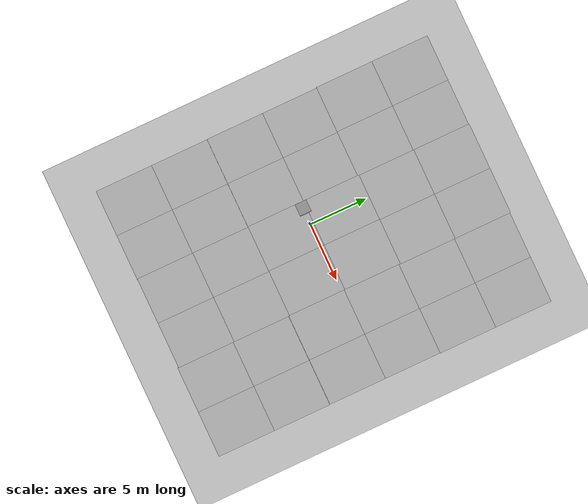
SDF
<sdf version="1.7">
 <world name="default">
  <light name="sun" type="directional">
   <pose>0 0 10 0 -0 0</pose>
   <diffuse>0.8 0.8 0.8 1</diffuse>
   <specular>0.2 0.2 0.2 1</specular>
   <attenuation>
    <range>1000</range>
    <constant>0.9</constant>
    <linear>0.01</linear>
    <quadratic>0.001</quadratic>
   </attenuation>
   <direction>-0.5 0.1 -0.9</direction>
   <spot><inner_angle>0</inner_angle><outer_angle>0</outer_angle><falloff>0</falloff></spot>
  </light>
  <model name="ground_plane">
   <static>1</static>
   <link name="link">
    <collision name="collision">
     <geometry><plane><normal>0 0 1</normal><size>100 100</size></plane></geometry>
     <surface><friction><ode><mu>100</mu><mu2>50</mu2></ode></friction></surface>
    </collision>
    <visual name="visual">
     <cast_shadows>0</cast_shadows>
     <geometry><plane><normal>0 0 1</normal><size>100 100</size></plane></geometry>
     <material>
      <script><uri>file://media/materials/scripts/gazebo.material</uri><name>Gazebo/Grey</name></script>
     </material>
    </visual>
   </link>
  </model>
  <gravity>0 0 -9.8</gravity>
  <magnetic_field>6e-06 2.3e-05 -4.2e-05</magnetic_field>
  <atmosphere type="adiabatic"/>
  <physics type="ode">
   <max_step_size>0.001</max_step_size>
   <real_time_factor>1</real_time_factor>
   <real_time_update_rate>1000</real_time_update_rate>
  </physics>
  <scene><ambient>0.4 0.4 0.4 1</ambient><background>0.7 0.7 0.7 1</background><shadows>1</shadows></scene>
  <spherical_coordinates>
   <surface_model>EARTH_WGS84</surface_model>
   <latitude_deg>0</latitude_deg>
   <longitude_deg>0</longitude_deg>
   <elevation>0</elevation>
   <heading_deg>0</heading_deg>
  </spherical_coordinates>
  <model name="mud_box">
   <static>1</static>
   <link name="link">
    <collision name="collision"><geometry><box><size>8 10 0.2</size></box></geometry></collision>
    <visual name="visual_1">
     <pose>-2 2.5 0 0 -0 0</pose>
     <cast_shadows>0</cast_shadows>
     <geometry><box><size>4 5 0.2</size></box></geometry>
     <material>
      <script>
       <uri>model://mud_box/materials/scripts</uri>
       <uri>model://mud_box/materials/textures</uri>
       <name>vrc/mud</name>
      </script>
     </material>
    </visual>
    <visual name="visual_2">
     <pose>2 2.5 0 0 -0 0</pose>
     <cast_shadows>0</cast_shadows>
     <geometry><box><size>4 5 0.2</size></box></geometry>
     <material>
      <script>
       <uri>model://mudbox/materials/scripts</uri>
       <uri>model://mudbox/materials/textures</uri>
       <name>vrc/mud</name>
      </script>
     </material>
    </visual>
    <visual name="visual_3">
     <pose>2 -2.5 0 0 -0 0</pose>
     <cast_shadows>0</cast_shadows>
     <geometry><box><size>4 5 0.2</size></box></geometry>
     <material>
      <script>
       <uri>model://mud_box/materials/scripts</uri>
       <uri>model://mud_box/materials/textures</uri>
       <name>vrc/mud</name>
      </script>
     </material>
    </visual>
    <visual name="visual_4">
     <pose>-2 -2.5 0 0 -0 0</pose>
     <cast_shadows>0</cast_shadows>
     <geometry><box><size>4 5 0.2</size></box></geometry>
     <material>
      <script>
       <uri>model://mud_box/materials/scripts</uri>
       <uri>model://mud_box/materials/textures</uri>
       <name>vrc/mud</name>
      </script>
     </material>
    </visual>
   </link>
   <pose>1.99616 0.287578 0 0 -0 0</pose>
  </model>
  <model name="mud_box_0">
   <static>1</static>
   <link name="link">
    <collision name="collision"><geometry><box><size>8 10 0.2</size></box></geometry></collision>
    <visual name="visual_1">
     <pose>-2 2.5 0 0 -0 0</pose>
     <cast_shadows>0</cast_shadows>
     <geometry><box><size>4 5 0.2</size></box></geometry>
     <material>
      <script>
       <uri>model://mud_box/materials/scripts</uri>
       <uri>model://mud_box/materials/textures</uri>
       <name>vrc/mud</name>
      </script>
     </material>
    </visual>
    <visual name="visual_2">
     <pose>2 2.5 0 0 -0 0</pose>
     <cast_shadows>0</cast_shadows>
     <geometry><box><size>4 5 0.2</size></box></geometry>
     <material>
      <script>
       <uri>model://mud_box/materials/scripts</uri>
       <uri>model://mud_box/materials/textures</uri>
       <name>vrc/mud</name>
      </script>
     </material>
    </visual>
    <visual name="visual_3">
     <pose>2 -2.5 0 0 -0 0</pose>
     <cast_shadows>0</cast_shadows>
     <geometry><box><size>4 5 0.2</size></box></geometry>
     <material>
      <script>
       <uri>model://mud_box/materials/scripts</uri>
       <uri>model://mud_box/materials/textures</uri>
       <name>vrc/mud</name>
      </script>
     </material>
    </visual>
    <visual name="visual_4">
     <pose>-2 -2.5 0 0 -0 0</pose>
     <cast_shadows>0</cast_shadows>
     <geometry><box><size>4 5 0.2</size></box></geometry>
     <material>
      <script>
       <uri>model://mud_box/materials/scripts</uri>
       <uri>model://mud_box/materials/textures</uri>
       <name>vrc/mud</name>
      </script>
     </material>
    </visual>
   </link>
   <pose>2.03447 10.2139 0 0 -0 0</pose>
  </model>
  <model name="mud_box_1">
   <static>1</static>
   <link name="link">
    <collision name="collision"><geometry><box><size>8 10 0.2</size></box></geometry></collision>
    <visual name="visual_1">
     <pose>-2 2.5 0 0 -0 0</pose>
     <cast_shadows>0</cast_shadows>
     <geometry><box><size>4 5 0.2</size></box></geometry>
     <material>
      <script>
       <uri>model://mud_box/materials/scripts</uri>
       <uri>model://mud_box/materials/textures</uri>
       <name>vrc/mud</name>
      </script>
     </material>
    </visual>
    <visual name="visual_2">
     <pose>2 2.5 0 0 -0 0</pose>
     <cast_shadows>0</cast_shadows>
     <geometry><box><size>4 5 0.2</size></box></geometry>
     <material>
      <script>
       <uri>model://mud_box/materials/scripts</uri>
       <uri>model://mud_box/materials/textures</uri>
       <name>vrc/mud</name>
      </script>
     </material>
    </visual>
    <visual name="visual_3">
     <pose>2 -2.5 0 0 -0 0</pose>
     <cast_shadows>0</cast_shadows>
     <geometry><box><size>4 5 0.2</size></box></geometry>
     <material>
      <script>
       <uri>model://mud_box/materials/scripts</uri>
       <uri>model://mud_box/materials/textures</uri>
       <name>vrc/mud</name>
      </script>
     </material>
    </visual>
    <visual name="visual_4">
     <pose>-2 -2.5 0 0 -0 0</pose>
     <cast_shadows>0</cast_shadows>
     <geometry><box><size>4 5 0.2</size></box></geometry>
     <material>
      <script>
       <uri>model://mud_box/materials/scripts</uri>
       <uri>model://mud_box/materials/textures</uri>
       <name>vrc/mud</name>
      </script>
     </material>
    </visual>
   </link>
   <pose>2.03621 -9.70732 0 0 -0 0</pose>
  </model>
  <model name="mud_box_2">
   <static>1</static>
   <link name="link">
    <collision name="collision"><geometry><box><size>8 10 0.2</size></box></geometry></collision>
    <visual name="visual_1">
     <pose>-2 2.5 0 0 -0 0</pose>
     <cast_shadows>0</cast_shadows>
     <geometry><box><size>4 5 0.2</size></box></geometry>
     <material>
      <script>
       <uri>model://mud_box/materials/scripts</uri>
       <uri>model://mud_box/materials/textures</uri>
       <name>vrc/mud</name>
      </script>
     </material>
    </visual>
    <visual name="visual_2">
     <pose>2 2.5 0 0 -0 0</pose>
     <cast_shadows>0</cast_shadows>
     <geometry><box><size>4 5 0.2</size></box></geometry>
     <material>
      <script>
       <uri>model://mud_box/materials/scripts</uri>
       <uri>model://mud_box/materials/textures</uri>
       <name>vrc/mud</name>
      </script>
     </material>
    </visual>
    <visual name="visual_3">
     <pose>2 -2.5 0 0 -0 0</pose>
     <cast_shadows>0</cast_shadows>
     <geometry><box><size>4 5 0.2</size></box></geometry>
     <material>
      <script>
       <uri>model://mud_box/materials/scripts</uri>
       <uri>model://mud_box/materials/textures</uri>
       <name>vrc/mud</name>
      </script>
     </material>
    </visual>
    <visual name="visual_4">
     <pose>-2 -2.5 0 0 -0 0</pose>
     <cast_shadows>0</cast_shadows>
     <geometry><box><size>4 5 0.2</size></box></geometry>
     <material>
      <script>
       <uri>model://mud_box/materials/scripts</uri>
       <uri>model://mud_box/materials/textures</uri>
       <name>vrc/mud</name>
      </script>
     </material>
    </visual>
   </link>
   <pose>10.008 10.1491 0 0 -0 0</pose>
  </model>
  <model name="mud_box_3">
   <static>1</static>
   <link name="link">
    <collision name="collision"><geometry><box><size>8 10 0.2</size></box></geometry></collision>
    <visual name="visual_1">
     <pose>-2 2.5 0 0 -0 0</pose>
     <cast_shadows>0</cast_shadows>
     <geometry><box><size>4 5 0.2</size></box></geometry>
     <material>
      <script>
       <uri>model://mud_box/materials/scripts</uri>
       <uri>model://mud_box/materials/textures</uri>
       <name>vrc/mud</name>
      </script>
     </material>
    </visual>
    <visual name="visual_2">
     <pose>2 2.5 0 0 -0 0</pose>
     <cast_shadows>0</cast_shadows>
     <geometry><box><size>4 5 0.2</size></box></geometry>
     <material>
      <script>
       <uri>model://mud_box/materials/scripts</uri>
       <uri>model://mud_box/materials/textures</uri>
       <name>vrc/mud</name>
      </script>
     </material>
    </visual>
    <visual name="visual_3">
     <pose>2 -2.5 0 0 -0 0</pose>
     <cast_shadows>0</cast_shadows>
     <geometry><box><size>4 5 0.2</size></box></geometry>
     <material>
      <script>
       <uri>model://mud_box/materials/scripts</uri>
       <uri>model://mud_box/materials/textures</uri>
       <name>vrc/mud</name>
      </script>
     </material>
    </visual>
    <visual name="visual_4">
     <pose>-2 -2.5 0 0 -0 0</pose>
     <cast_shadows>0</cast_shadows>
     <geometry><box><size>4 5 0.2</size></box></geometry>
     <material>
      <script>
       <uri>model://mud_box/materials/scripts</uri>
       <uri>model://mud_box/materials/textures</uri>
       <name>vrc/mud</name>
      </script>
     </material>
    </visual>
   </link>
   <pose>9.98653 0.217751 0 0 -0 0</pose>
  </model>
  <model name="mud_box_4">
   <static>1</static>
   <link name="link">
    <collision name="collision"><geometry><box><size>8 10 0.2</size></box></geometry></collision>
    <visual name="visual_1">
     <pose>-2 2.5 0 0 -0 0</pose>
     <cast_shadows>0</cast_shadows>
     <geometry><box><size>4 5 0.2</size></box></geometry>
     <material>
      <script>
       <uri>model://mud_box/materials/scripts</uri>
       <uri>model://mud_box/materials/textures</uri>
       <name>vrc/mud</name>
      </script>
     </material>
    </visual>
    <visual name="visual_2">
     <pose>2 2.5 0 0 -0 0</pose>
     <cast_shadows>0</cast_shadows>
     <geometry><box><size>4 5 0.2</size></box></geometry>
     <material>
      <script>
       <uri>model://mud_box/materials/scripts</uri>
       <uri>model://mud_box/materials/textures</uri>
       <name>vrc/mud</name>
      </script>
     </material>
    </visual>
    <visual name="visual_3">
     <pose>2 -2.5 0 0 -0 0</pose>
     <cast_shadows>0</cast_shadows>
     <geometry><box><size>4 5 0.2</size></box></geometry>
     <material>
      <script>
       <uri>model://mud_box/materials/scripts</uri>
       <uri>model://mud_box/materials/textures</uri>
       <name>vrc/mud</name>
      </script>
     </material>
    </visual>
    <visual name="visual_4">
     <pose>-2 -2.5 0 0 -0 0</pose>
     <cast_shadows>0</cast_shadows>
     <geometry><box><size>4 5 0.2</size></box></geometry>
     <material>
      <script>
       <uri>model://mud_box/materials/scripts</uri>
       <uri>model://mud_box/materials/textures</uri>
       <name>vrc/mud</name>
      </script>
     </material>
    </visual>
   </link>
   <pose>10.0057 -9.79773 0 0 -0 0</pose>
  </model>
  <model name="mud_box_5">
   <static>1</static>
   <link name="link">
    <collision name="collision"><geometry><box><size>8 10 0.2</size></box></geometry></collision>
    <visual name="visual_1">
     <pose>-2 2.5 0 0 -0 0</pose>
     <cast_shadows>0</cast_shadows>
     <geometry><box><size>4 5 0.2</size></box></geometry>
     <material>
      <script>
       <uri>model://mud_box/materials/scripts</uri>
       <uri>model://mud_box/materials/textures</uri>
       <name>vrc/mud</name>
      </script>
     </material>
    </visual>
    <visual name="visual_2">
     <pose>2 2.5 0 0 -0 0</pose>
     <cast_shadows>0</cast_shadows>
     <geometry><box><size>4 5 0.2</size></box></geometry>
     <material>
      <script>
       <uri>model://mud_box/materials/scripts</uri>
       <uri>model://mud_box/materials/textures</uri>
       <name>vrc/mud</name>
      </script>
     </material>
    </visual>
    <visual name="visual_3">
     <pose>2 -2.5 0 0 -0 0</pose>
     <cast_shadows>0</cast_shadows>
     <geometry><box><size>4 5 0.2</size></box></geometry>
     <material>
      <script>
       <uri>model://mud_box/materials/scripts</uri>
       <uri>model://mud_box/materials/textures</uri>
       <name>vrc/mud</name>
      </script>
     </material>
    </visual>
    <visual name="visual_4">
     <pose>-2 -2.5 0 0 -0 0</pose>
     <cast_shadows>0</cast_shadows>
     <geometry><box><size>4 5 0.2</size></box></geometry>
     <material>
      <script>
       <uri>model://mud_box/materials/scripts</uri>
       <uri>model://mud_box/materials/textures</uri>
       <name>vrc/mud</name>
      </script>
     </material>
    </visual>
   </link>
   <pose>-5.945 10.1625 0 0 -0 0</pose>
  </model>
  <model name="mud_box_6">
   <static>1</static>
   <link name="link">
    <collision name="collision"><geometry><box><size>8 10 0.2</size></box></geometry></collision>
    <visual name="visual_1">
     <pose>-2 2.5 0 0 -0 0</pose>
     <cast_shadows>0</cast_shadows>
     <geometry><box><size>4 5 0.2</size></box></geometry>
     <material>
      <script>
       <uri>model://mud_box/materials/scripts</uri>
       <uri>model://mud_box/materials/textures</uri>
       <name>vrc/mud</name>
      </script>
     </material>
    </visual>
    <visual name="visual_2">
     <pose>2 2.5 0 0 -0 0</pose>
     <cast_shadows>0</cast_shadows>
     <geometry><box><size>4 5 0.2</size></box></geometry>
     <material>
      <script>
       <uri>model://mud_box/materials/scripts</uri>
       <uri>model://mud_box/materials/textures</uri>
       <name>vrc/mud</name>
      </script>
     </material>
    </visual>
    <visual name="visual_3">
     <pose>2 -2.5 0 0 -0 0</pose>
     <cast_shadows>0</cast_shadows>
     <geometry><box><size>4 5 0.2</size></box></geometry>
     <material>
      <script>
       <uri>model://mud_box/materials/scripts</uri>
       <uri>model://mud_box/materials/textures</uri>
       <name>vrc/mud</name>
      </script>
     </material>
    </visual>
    <visual name="visual_4">
     <pose>-2 -2.5 0 0 -0 0</pose>
     <cast_shadows>0</cast_shadows>
     <geometry><box><size>4 5 0.2</size></box></geometry>
     <material>
      <script>
       <uri>model://mud_box/materials/scripts</uri>
       <uri>model://mud_box/materials/textures</uri>
       <name>vrc/mud</name>
      </script>
     </material>
    </visual>
   </link>
   <pose>-5.8861 0.277964 0 0 -0 0</pose>
  </model>
  <model name="mud_box_7">
   <static>1</static>
   <link name="link">
    <collision name="collision"><geometry><box><size>8 10 0.2</size></box></geometry></collision>
    <visual name="visual_1">
     <pose>-2 2.5 0 0 -0 0</pose>
     <cast_shadows>0</cast_shadows>
     <geometry><box><size>4 5 0.2</size></box></geometry>
     <material>
      <script>
       <uri>model://mud_box/materials/scripts</uri>
       <uri>model://mud_box/materials/textures</uri>
       <name>vrc/mud</name>
      </script>
     </material>
    </visual>
    <visual name="visual_2">
     <pose>2 2.5 0 0 -0 0</pose>
     <cast_shadows>0</cast_shadows>
     <geometry><box><size>4 5 0.2</size></box></geometry>
     <material>
      <script>
       <uri>model://mud_box/materials/scripts</uri>
       <uri>model://mud_box/materials/textures</uri>
       <name>vrc/mud</name>
      </script>
     </material>
    </visual>
    <visual name="visual_3">
     <pose>2 -2.5 0 0 -0 0</pose>
     <cast_shadows>0</cast_shadows>
     <geometry><box><size>4 5 0.2</size></box></geometry>
     <material>
      <script>
       <uri>model://mud_box/materials/scripts</uri>
       <uri>model://mud_box/materials/textures</uri>
       <name>vrc/mud</name>
      </script>
     </material>
    </visual>
    <visual name="visual_4">
     <pose>-2 -2.5 0 0 -0 0</pose>
     <cast_shadows>0</cast_shadows>
     <geometry><box><size>4 5 0.2</size></box></geometry>
     <material>
      <script>
       <uri>model://mud_box/materials/scripts</uri>
       <uri>model://mud_box/materials/textures</uri>
       <name>vrc/mud</name>
      </script>
     </material>
    </visual>
   </link>
   <pose>-5.8662 -9.72788 0 0 -0 0</pose>
  </model>
  <model name="unit_box">
   <pose>-1.44142 0.027642 0.396062 -9e-06 0 0.010956</pose>
   <link name="link">
    <inertial>
     <mass>1</mass>
     <inertia>
      <ixx>0.166667</ixx>
      <ixy>0</ixy>
      <ixz>0</ixz>
      <iyy>0.166667</iyy>
      <iyz>0</iyz>
      <izz>0.166667</izz>
     </inertia>
    </inertial>
    <collision name="collision"><geometry><box><size>1 1 0.592135</size></box></geometry></collision>
    <visual name="visual">
     <geometry><box><size>1 1 0.592135</size></box></geometry>
     <material>
      <script><name>Gazebo/Grey</name><uri>file://media/materials/scripts/gazebo.material</uri></script>
     </material>
    </visual>
   </link>
  </model>
 </world>
</sdf>
